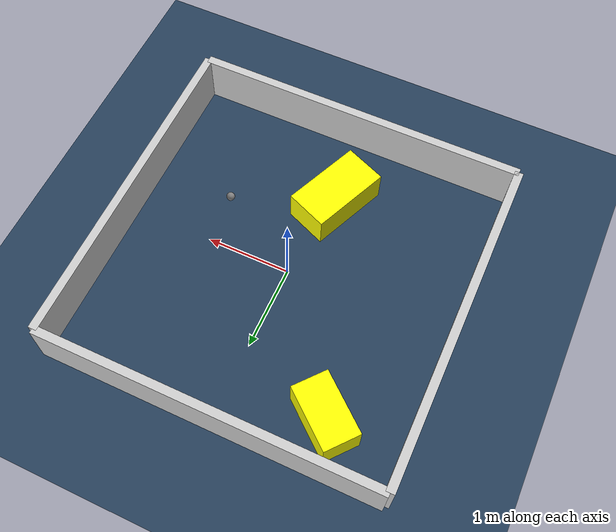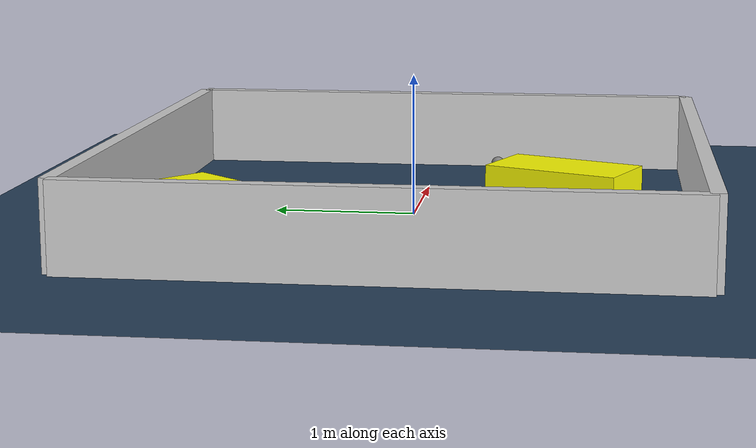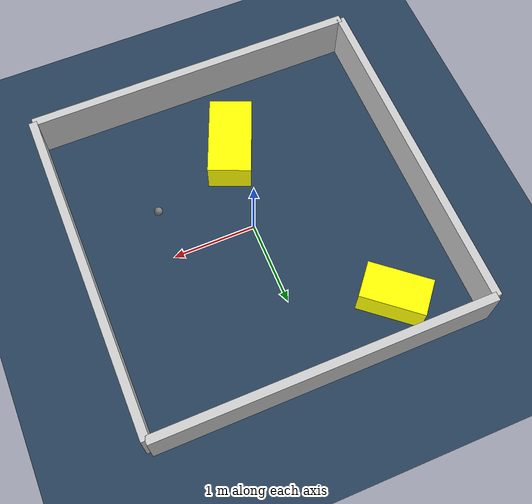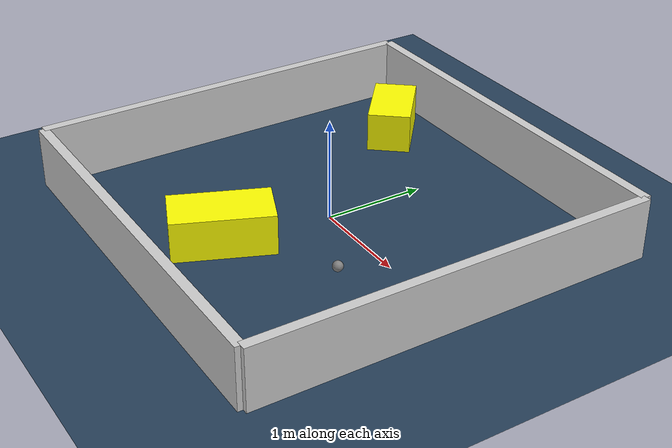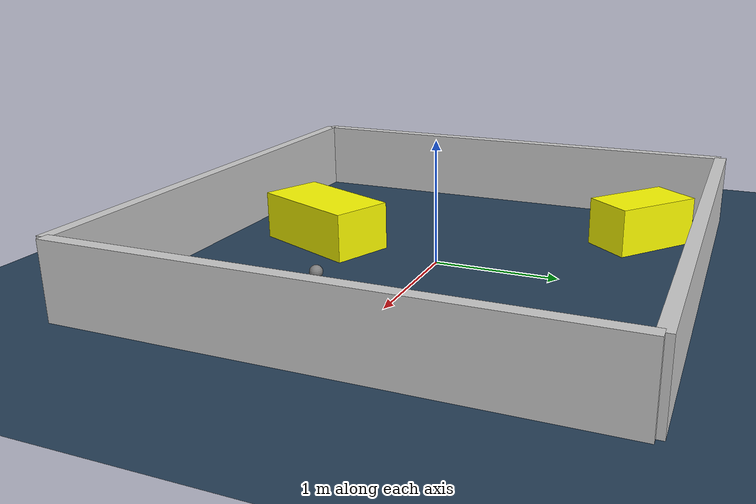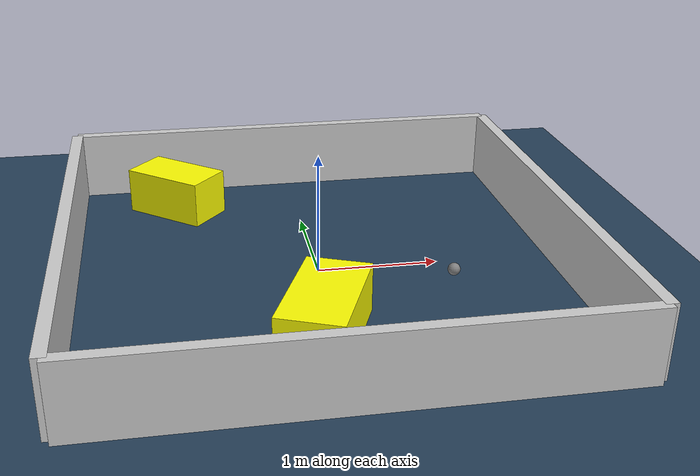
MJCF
<?xml version="1.0" ?>
<mujoco model="generated_environment">
  <option timestep="0.01" integrator="RK4" cone="elliptic"/>
  <default>
    <geom density="1"/>
  </default>
  <asset>
    <texture builtin="gradient" height="3072" rgb1="0.3 0.5 0.7" rgb2="0 0 0" type="skybox" width="512"/>
    <texture builtin="checker" height="300" mark="edge" markrgb="0.8 0.8 0.8" name="groundplane" rgb1="0.2 0.3 0.4" rgb2="0.1 0.2 0.3" type="2d" width="300"/>
    <material name="groundplane" reflectance="0.2" texrepeat="5 5" texture="groundplane" texuniform="true"/>
    <material name="robot" rgba="0.0 1.0 0.0 1"/>
  </asset>
  <worldbody>
    <light dir="0 0 -1" directional="true" pos="0 0 1.5"/>
    <geom condim="4" friction="1.0 0.005 0.001" material="groundplane" name="floor" size="0 0 0.05" type="plane"/>
    <body name="walls">
      <geom name="wall_1" condim="4" pos="-2.0 0.0 0.3" rgba="0.800000011920929 0.800000011920929 0.800000011920929 1.0" size="0.05 2.0 0.3" type="box"/>
      <geom name="wall_2" condim="4" pos="2.0 0.0 0.3" rgba="0.800000011920929 0.800000011920929 0.800000011920929 1.0" size="0.05 2.0 0.3" type="box"/>
      <geom name="wall_3" condim="4" pos="0.0 -2.0 0.3" rgba="0.800000011920929 0.800000011920929 0.800000011920929 1.0" size="2.0 0.05 0.3" type="box"/>
      <geom name="wall_4" condim="4" pos="0.0 2.0 0.3" rgba="0.800000011920929 0.800000011920929 0.800000011920929 1.0" size="2.0 0.05 0.3" type="box"/>
    </body>
    <body name="robot">
      <joint name="joint_x" type="slide" pos="0 0 0" axis="1 0 0"/>
      <joint name="joint_y" type="slide" pos="0 0 0" axis="0 1 0"/>
      <geom name="robot" type="sphere" pos="0.9902829271100222 -0.5355476836436808 0.2" size="0.05" mass="5." friction="1.0 0.005 0.0001" condim="4"/>
      <site name="sensor_ball"/>
    </body>
    <body name="obstacle_1_movable">
      <geom name="obstacle_1_movable" condim="4" pos="-1.1001172590700312 1.448770446891304 0.2" euler="0 0 230.24741291967007" friction="1.0 0.005 0.001" rgba="1 1 0 1" size="0.2169041859623947 0.38113617736324196 0.2" type="box" mass="0.1"/>
      <joint type="free"/>
    </body>
    <body name="obstacle_2_movable">
      <geom name="obstacle_2_movable" condim="4" pos="-0.1284385117899074 -1.0668667097397306 0.2" euler="0 0 247.15321856904427" friction="1.0 0.005 0.001" rgba="1 1 0 1" size="0.48169285126957 0.2571098888549882 0.2" type="box" mass="0.1"/>
      <joint type="free"/>
    </body>
  </worldbody>
  <actuator>
    <motor name="actuator_x" joint="joint_x" gear="1" ctrlrange="-1 1"/>
    <motor name="actuator_y" joint="joint_y" gear="1" ctrlrange="-1 1"/>
  </actuator>
</mujoco>
